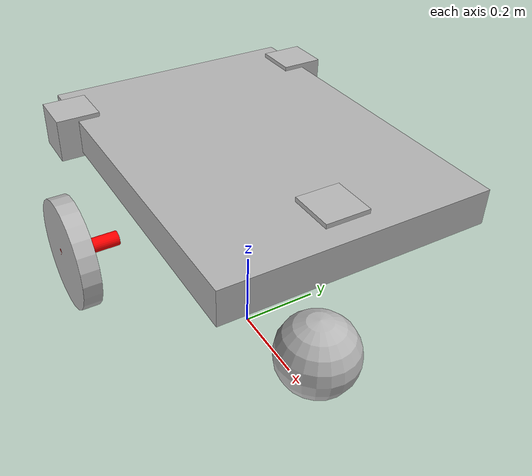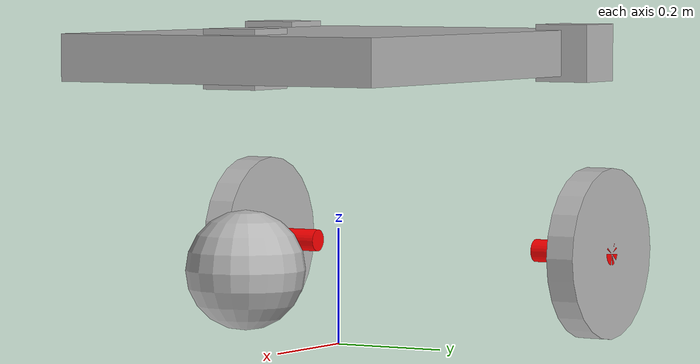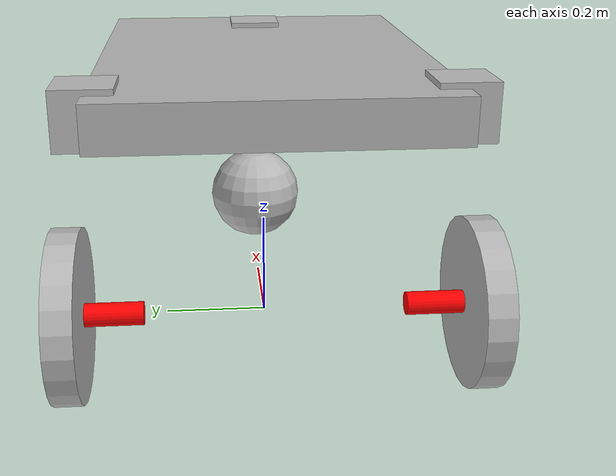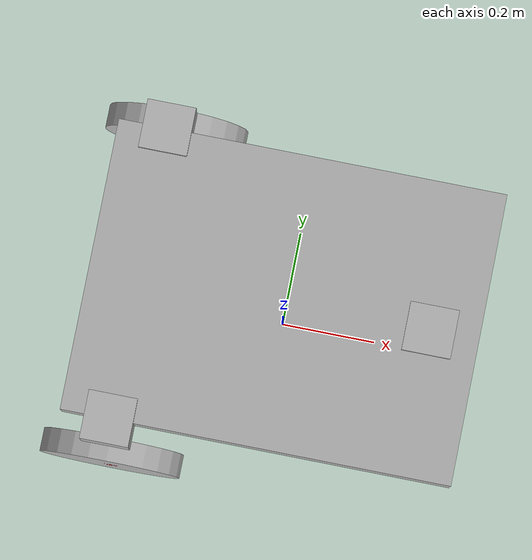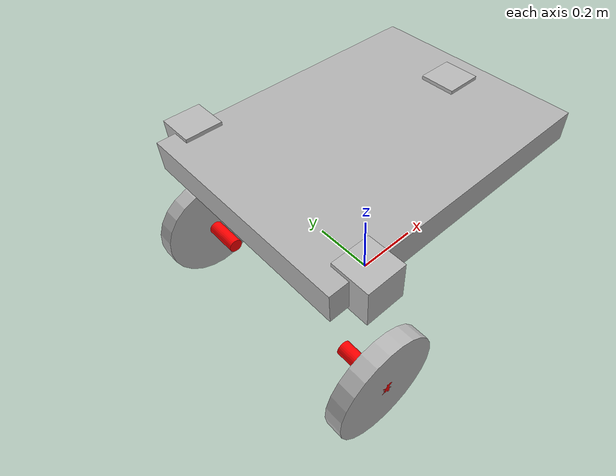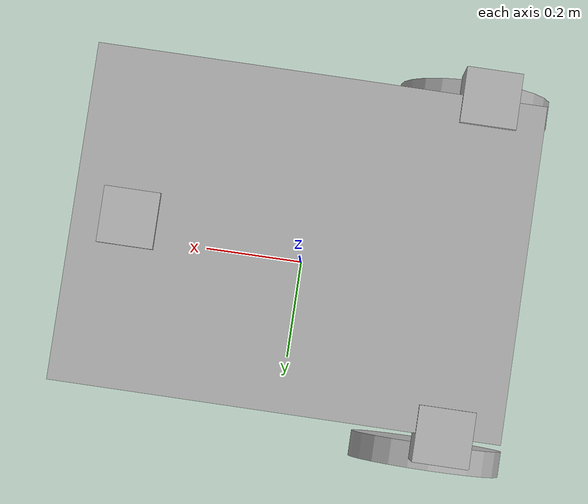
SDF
<sdf version="1.8">
  <model name="grey_robot_rear">
    <self_collide>false</self_collide>

    <link name="chassis">
      <pose>0 0 0.5 0 0 0</pose>
      <inertial>
        <pose>0 0 -0.2 0 0 0</pose> <mass>15.0</mass>
        <inertia><ixx>0.5</ixx><iyy>0.5</iyy><izz>0.5</izz></inertia>
      </inertial>
      <visual name="visual">
        <geometry><box><size>0.8 0.6 0.08</size></box></geometry>
        <material><ambient>0.7 0.7 0.7 1</ambient><diffuse>0.7 0.7 0.7 1</diffuse></material>
      </visual>
      <collision name="chassis_collision">
        <geometry><box><size>0.8 0.6 0.08</size></box></geometry>
      </collision>
    </link>

    <link name="body_L"><pose>-0.3 0.3 0.5 0 0 0</pose><visual name="visual"><geometry><box><size>0.1 0.1 0.1</size></box></geometry></visual></link>
    <link name="axle_L"><pose>-0.3 0.3 0.15 1.5708 0 0</pose><visual name="visual"><geometry><cylinder><radius>0.02</radius><length>0.15</length></cylinder></geometry><material><ambient>1 0 0 1</ambient></material></visual></link>

    <link name="tire_L">
      <pose>-0.3 0.35 0.15 1.5708 0 0</pose>
      <collision name="collision">
          <geometry><cylinder><radius>0.15</radius><length>0.05</length></cylinder></geometry>
      </collision>
      <visual name="visual">
          <geometry><cylinder><radius>0.15</radius><length>0.05</length></cylinder></geometry>
      </visual>

    </link>

    <link name="body_R"><pose>-0.3 -0.3 0.5 0 0 0</pose><visual name="visual"><geometry><box><size>0.1 0.1 0.1</size></box></geometry></visual></link>
    <link name="axle_R"><pose>-0.3 -0.3 0.15 1.5708 0 0</pose><visual name="visual"><geometry><cylinder><radius>0.02</radius><length>0.15</length></cylinder></geometry><material><ambient>1 0 0 1</ambient></material></visual></link>

    <link name="tire_R">
      <pose>-0.3 -0.35 0.15 1.5708 0 0</pose>
      <collision name="collision">
          <geometry><cylinder><radius>0.15</radius><length>0.05</length></cylinder></geometry>
      </collision>

      <visual name="visual">
          <geometry><cylinder><radius>0.15</radius><length>0.05</length></cylinder></geometry>
      </visual>
    </link>

    <link name="caster_housing"><pose>0.3 0 0.5 0 0 0</pose><visual name="visual"><geometry><box><size>0.1 0.1 0.1</size></box></geometry></visual></link>

    <link name="caster_ball">
      <pose>0.3 0 0.15 0 0 0</pose>
      <collision name="collision">
        <geometry><sphere><radius>0.1</radius></sphere></geometry>
        <surface>
          <friction>
            <ode>
              <mu>0.01</mu> <mu2>0.01</mu2>
              <slip1>1.0</slip1> <slip2>1.0</slip2>
            </ode>
          </friction>
          <contact>
            <ode>
              <soft_cfm>0.01</soft_cfm> <kp>1000000.0</kp>
              <kd>1.0</kd>
            </ode>
          </contact>
        </surface>
      </collision>
      <visual name="visual">
        <geometry><sphere><radius>0.1</radius></sphere></geometry>
      </visual>
    </link>

    <joint name="ch_to_L" type="fixed"><parent>chassis</parent><child>body_L</child></joint>
    <joint name="ch_to_R" type="fixed"><parent>chassis</parent><child>body_R</child></joint>
    <joint name="ch_to_C" type="fixed"><parent>chassis</parent><child>caster_housing</child></joint>

    <joint name="suspension_L" type="prismatic">
      <parent>body_L</parent><child>axle_L</child>
      <axis>
        <xyz expressed_in="__model__">0 0 1</xyz>
        <limit><lower>-0.15</lower><upper>0.15</upper></limit>
        <dynamics>
          <spring_stiffness>2000.0</spring_stiffness> <damping>450.0</damping>
          <spring_reference>0.0</spring_reference>
        </dynamics>
      </axis>
    </joint>

    <joint name="suspension_R" type="prismatic">
      <parent>body_R</parent><child>axle_R</child>
      <axis>
        <xyz expressed_in="__model__">0 0 1</xyz>
        <limit><lower>-0.15</lower><upper>0.15</upper></limit>
        <dynamics>
          <spring_stiffness>2000.0</spring_stiffness> <damping>450.0</damping>
          <spring_reference>0.0</spring_reference>
        </dynamics>
      </axis>
    </joint>

    <joint name="suspension_caster" type="prismatic">
      <parent>caster_housing</parent>
      <child>caster_ball</child>
      <axis>
        <xyz expressed_in="__model__">0 0 1</xyz>
        <limit><lower>-0.02</lower><upper>0.02</upper></limit> <dynamics>
          <spring_stiffness>5000.0</spring_stiffness> <damping>500.0</damping>
          <spring_reference>0.0</spring_reference>
        </dynamics>
      </axis>
    </joint>

    <joint name="drive_L" type="revolute"><parent>axle_L</parent><child>tire_L</child><axis><xyz expressed_in="__model__">0 1 0</xyz></axis></joint>
    <joint name="drive_R" type="revolute"><parent>axle_R</parent><child>tire_R</child><axis><xyz expressed_in="__model__">0 1 0</xyz></axis></joint>

    <plugin filename="gz-sim-joint-state-publisher-system" name="gz::sim::systems::JointStatePublisher"/>
    <plugin filename="gz-sim-apply-joint-force-system" name="gz::sim::systems::ApplyJointForce"><joint_name>suspension_L</joint_name></plugin>
    <plugin filename="gz-sim-apply-joint-force-system" name="gz::sim::systems::ApplyJointForce"><joint_name>suspension_R</joint_name></plugin>

    <plugin filename="gz-sim-diff-drive-system" name="gz::sim::systems::DiffDrive">
      <left_joint>drive_L</left_joint>
      <right_joint>drive_R</right_joint>
      <wheel_separation>0.7</wheel_separation>
      <wheel_radius>0.15</wheel_radius>
      <topic>cmd_vel</topic>

      <max_linear_acceleration>0.8</max_linear_acceleration>
      <max_wheel_torque>50.0</max_wheel_torque>
    </plugin>

  </model>
</sdf>
